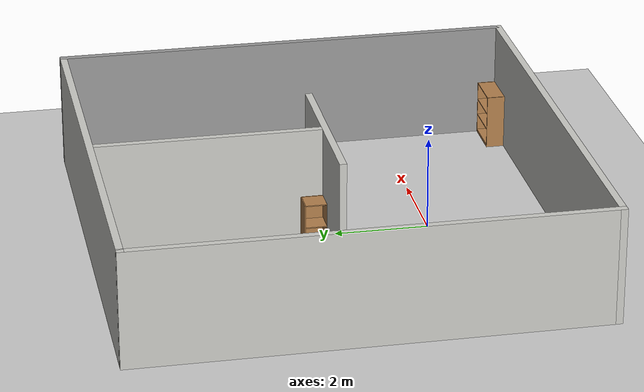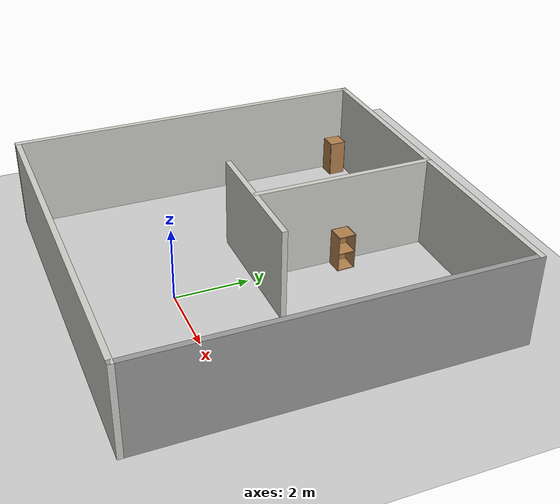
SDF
<sdf version="1.7">
 <world name="default">
  <light name="sun" type="directional">
   <pose>0 0 10 0 -0 0</pose>
   <diffuse>0.8 0.8 0.8 1</diffuse>
   <specular>0.2 0.2 0.2 1</specular>
   <attenuation>
    <range>1000</range>
    <constant>0.9</constant>
    <linear>0.01</linear>
    <quadratic>0.001</quadratic>
   </attenuation>
   <direction>-0.5 0.1 -0.9</direction>
   <spot><inner_angle>0</inner_angle><outer_angle>0</outer_angle><falloff>0</falloff></spot>
  </light>
  <model name="ground_plane">
   <static>1</static>
   <link name="link">
    <collision name="collision">
     <geometry><plane><normal>0 0 1</normal><size>100 100</size></plane></geometry>
     <surface><friction><ode><mu>100</mu><mu2>50</mu2></ode></friction></surface>
    </collision>
    <visual name="visual">
     <cast_shadows>0</cast_shadows>
     <geometry><plane><normal>0 0 1</normal><size>100 100</size></plane></geometry>
     <material>
      <script><uri>file://media/materials/scripts/gazebo.material</uri><name>Gazebo/Grey</name></script>
     </material>
    </visual>
   </link>
  </model>
  <gravity>0 0 -9.8</gravity>
  <magnetic_field>6e-06 2.3e-05 -4.2e-05</magnetic_field>
  <atmosphere type="adiabatic"/>
  <physics type="ode">
   <max_step_size>0.001</max_step_size>
   <real_time_factor>1</real_time_factor>
   <real_time_update_rate>1000</real_time_update_rate>
  </physics>
  <scene><ambient>0.4 0.4 0.4 1</ambient><background>0.7 0.7 0.7 1</background><shadows>1</shadows></scene>
  <audio><device>default</device></audio>
  <spherical_coordinates>
   <surface_model>EARTH_WGS84</surface_model>
   <latitude_deg>0</latitude_deg>
   <longitude_deg>0</longitude_deg>
   <elevation>0</elevation>
   <heading_deg>0</heading_deg>
  </spherical_coordinates>
  <model name="cafteria_walls_4">
   <pose>-0.113552 2.20857 0 0 -0 0</pose>
   <link name="Wall_0">
    <collision name="Wall_0_Collision">
     <geometry><box><size>10 0.15 2.5</size></box></geometry>
     <pose>0 0 1.25 0 -0 0</pose>
    </collision>
    <visual name="Wall_0_Visual">
     <pose>0 0 1.25 0 -0 0</pose>
     <geometry><box><size>10 0.15 2.5</size></box></geometry>
     <material>
      <script><uri>file://media/materials/scripts/gazebo.material</uri><name>Gazebo/CeilingTiled</name></script>
      <ambient>1 1 1 1</ambient>
     </material>
     <meta><layer>0</layer></meta>
    </visual>
    <pose>-0 4.925 0 0 -0 0</pose>
   </link>
   <link name="Wall_3">
    <collision name="Wall_3_Collision">
     <geometry><box><size>10 0.15 2.5</size></box></geometry>
     <pose>0 0 1.25 0 -0 0</pose>
    </collision>
    <visual name="Wall_3_Visual">
     <pose>0 0 1.25 0 -0 0</pose>
     <geometry><box><size>10 0.15 2.5</size></box></geometry>
     <material>
      <script><uri>file://media/materials/scripts/gazebo.material</uri><name>Gazebo/Grey</name></script>
      <ambient>1 1 1 1</ambient>
     </material>
     <meta><layer>0</layer></meta>
    </visual>
    <pose>4.925 0 0 0 -0 -1.5708</pose>
   </link>
   <link name="Wall_4">
    <collision name="Wall_4_Collision">
     <geometry><box><size>10 0.15 2.5</size></box></geometry>
     <pose>0 0 1.25 0 -0 0</pose>
    </collision>
    <visual name="Wall_4_Visual">
     <pose>0 0 1.25 0 -0 0</pose>
     <geometry><box><size>10 0.15 2.5</size></box></geometry>
     <material>
      <script><uri>file://media/materials/scripts/gazebo.material</uri><name>Gazebo/CeilingTiled</name></script>
      <ambient>1 1 1 1</ambient>
     </material>
     <meta><layer>0</layer></meta>
    </visual>
    <pose>-0 -4.925 0 0 -0 3.14159</pose>
   </link>
   <link name="Wall_5">
    <collision name="Wall_5_Collision">
     <geometry><box><size>10 0.15 2.5</size></box></geometry>
     <pose>0 0 1.25 0 -0 0</pose>
    </collision>
    <visual name="Wall_5_Visual">
     <pose>0 0 1.25 0 -0 0</pose>
     <geometry><box><size>10 0.15 2.5</size></box></geometry>
     <material>
      <script><uri>file://media/materials/scripts/gazebo.material</uri><name>Gazebo/CeilingTiled</name></script>
      <ambient>1 1 1 1</ambient>
     </material>
     <meta><layer>0</layer></meta>
    </visual>
    <pose>-4.925 0 0 0 -0 1.5708</pose>
   </link>
   <link name="Wall_7">
    <collision name="Wall_7_Collision">
     <geometry><box><size>5 0.15 2.5</size></box></geometry>
     <pose>0 0 1.25 0 -0 0</pose>
    </collision>
    <visual name="Wall_7_Visual">
     <pose>0 0 1.25 0 -0 0</pose>
     <geometry><box><size>5 0.15 2.5</size></box></geometry>
     <material>
      <script><uri>file://media/materials/scripts/gazebo.material</uri><name>Gazebo/CeilingTiled</name></script>
      <ambient>1 1 1 1</ambient>
     </material>
     <meta><layer>0</layer></meta>
    </visual>
    <pose>0.026394 2.49278 0 0 -0 -1.5708</pose>
   </link>
   <link name="Wall_9">
    <collision name="Wall_9_Collision">
     <geometry><box><size>3.75 0.15 2.5</size></box></geometry>
     <pose>0 0 1.25 0 -0 0</pose>
    </collision>
    <visual name="Wall_9_Visual">
     <pose>0 0 1.25 0 -0 0</pose>
     <geometry><box><size>3.75 0.15 2.5</size></box></geometry>
     <material>
      <script><uri>file://media/materials/scripts/gazebo.material</uri><name>Gazebo/CeilingTiled</name></script>
      <ambient>1 1 1 1</ambient>
     </material>
     <meta><layer>0</layer></meta>
    </visual>
    <pose>0.026643 0.014094 0 0 -0 0</pose>
   </link>
   <static>1</static>
  </model>
  <model name="bookshelf">
   <static>1</static>
   <link name="link">
    <inertial><mass>1</mass></inertial>
    <collision name="back">
     <pose>0 0.005 0.6 0 -0 0</pose>
     <geometry><box><size>0.9 0.01 1.2</size></box></geometry>
    </collision>
    <visual name="visual1">
     <pose>0 0.005 0.6 0 -0 0</pose>
     <geometry><box><size>0.9 0.01 1.2</size></box></geometry>
     <material>
      <script><uri>file://media/materials/scripts/gazebo.material</uri><name>Gazebo/Wood</name></script>
     </material>
    </visual>
    <collision name="left_side">
     <pose>0.45 -0.195 0.6 0 -0 0</pose>
     <geometry><box><size>0.02 0.4 1.2</size></box></geometry>
    </collision>
    <visual name="visual2">
     <pose>0.45 -0.195 0.6 0 -0 0</pose>
     <geometry><box><size>0.02 0.4 1.2</size></box></geometry>
     <material>
      <script><uri>file://media/materials/scripts/gazebo.material</uri><name>Gazebo/Wood</name></script>
     </material>
    </visual>
    <collision name="right_side">
     <pose>-0.45 -0.195 0.6 0 -0 0</pose>
     <geometry><box><size>0.02 0.4 1.2</size></box></geometry>
    </collision>
    <visual name="visual3">
     <pose>-0.45 -0.195 0.6 0 -0 0</pose>
     <geometry><box><size>0.02 0.4 1.2</size></box></geometry>
     <material>
      <script><uri>file://media/materials/scripts/gazebo.material</uri><name>Gazebo/Wood</name></script>
     </material>
    </visual>
    <collision name="bottom">
     <pose>0 -0.195 0.03 0 -0 0</pose>
     <geometry><box><size>0.88 0.4 0.06</size></box></geometry>
    </collision>
    <visual name="visual4">
     <pose>0 -0.195 0.03 0 -0 0</pose>
     <geometry><box><size>0.88 0.4 0.06</size></box></geometry>
     <material>
      <script><uri>file://media/materials/scripts/gazebo.material</uri><name>Gazebo/Wood</name></script>
     </material>
    </visual>
    <collision name="top">
     <pose>0 -0.195 1.19 0 -0 0</pose>
     <geometry><box><size>0.88 0.4 0.02</size></box></geometry>
    </collision>
    <visual name="visual5">
     <pose>0 -0.195 1.19 0 -0 0</pose>
     <geometry><box><size>0.88 0.4 0.02</size></box></geometry>
     <material>
      <script><uri>file://media/materials/scripts/gazebo.material</uri><name>Gazebo/Wood</name></script>
     </material>
    </visual>
    <collision name="low_shelf">
     <pose>0 -0.195 0.43 0 -0 0</pose>
     <geometry><box><size>0.88 0.4 0.02</size></box></geometry>
    </collision>
    <visual name="visual6">
     <pose>0 -0.195 0.43 0 -0 0</pose>
     <geometry><box><size>0.88 0.4 0.02</size></box></geometry>
     <material>
      <script><uri>file://media/materials/scripts/gazebo.material</uri><name>Gazebo/Wood</name></script>
     </material>
    </visual>
    <collision name="high_shelf">
     <pose>0 -0.195 0.8 0 -0 0</pose>
     <geometry><box><size>0.88 0.4 0.02</size></box></geometry>
    </collision>
    <visual name="visual7">
     <pose>0 -0.195 0.8 0 -0 0</pose>
     <geometry><box><size>0.88 0.4 0.02</size></box></geometry>
     <material>
      <script><uri>file://media/materials/scripts/gazebo.material</uri><name>Gazebo/Wood</name></script>
     </material>
    </visual>
   </link>
   <pose>4.26586 -2.64744 0 0 -0 3.13802</pose>
  </model>
  <model name="cabinet">
   <static>1</static>
   <link name="cabinet_bottom_plate">
    <inertial>
     <pose>0 0 -1 0 -0 0</pose>
     <inertia><ixx>2.05</ixx><ixy>0</ixy><ixz>0</ixz><iyy>2.05</iyy><iyz>0</iyz><izz>2.05</izz></inertia>
     <mass>25</mass>
    </inertial>
    <collision name="cabinet_bottom_plate_geom">
     <pose>0 0 0.01 0 -0 0</pose>
     <geometry><box><size>0.45 0.45 0.02</size></box></geometry>
    </collision>
    <visual name="cabinet_bottom_plate_geom_visual">
     <pose>0 0 0.01 0 -0 0</pose>
     <geometry><box><size>0.45 0.45 0.02</size></box></geometry>
     <material>
      <script><uri>file://media/materials/scripts/gazebo.material</uri><name>Gazebo/Wood</name></script>
     </material>
    </visual>
    <collision name="cabinet_bottom_plate_geom_cabinet_back_plate">
     <pose>0.235 0 0.51 0 -0 0</pose>
     <geometry><box><size>0.02 0.45 1.02</size></box></geometry>
    </collision>
    <visual name="cabinet_bottom_plate_geom_cabinet_back_plate_visual">
     <pose>0.235 0 0.51 0 -0 0</pose>
     <geometry><box><size>0.02 0.45 1.02</size></box></geometry>
     <material>
      <script><uri>file://media/materials/scripts/gazebo.material</uri><name>Gazebo/Wood</name></script>
     </material>
    </visual>
    <collision name="cabinet_bottom_plate_geom_cabinet_left_plate">
     <pose>0 0.235 0.51 0 -0 0</pose>
     <geometry><box><size>0.45 0.02 1.02</size></box></geometry>
    </collision>
    <visual name="cabinet_bottom_plate_geom_cabinet_left_plate_visual">
     <pose>0 0.235 0.51 0 -0 0</pose>
     <geometry><box><size>0.45 0.02 1.02</size></box></geometry>
     <material>
      <script><uri>file://media/materials/scripts/gazebo.material</uri><name>Gazebo/Wood</name></script>
     </material>
    </visual>
    <collision name="cabinet_bottom_plate_geom_cabinet_middle_plate">
     <pose>0 0 0.51 0 -0 0</pose>
     <geometry><box><size>0.45 0.45 0.02</size></box></geometry>
    </collision>
    <visual name="cabinet_bottom_plate_geom_cabinet_middle_plate_visual">
     <pose>0 0 0.51 0 -0 0</pose>
     <geometry><box><size>0.45 0.45 0.02</size></box></geometry>
     <material>
      <script><uri>file://media/materials/scripts/gazebo.material</uri><name>Gazebo/Wood</name></script>
     </material>
    </visual>
    <collision name="cabinet_bottom_plate_geom_cabinet_right_plate">
     <pose>0 -0.235 0.51 0 -0 0</pose>
     <geometry><box><size>0.45 0.02 1.02</size></box></geometry>
    </collision>
    <visual name="cabinet_bottom_plate_geom_cabinet_right_plate_visual">
     <pose>0 -0.235 0.51 0 -0 0</pose>
     <geometry><box><size>0.45 0.02 1.02</size></box></geometry>
     <material>
      <script><uri>file://media/materials/scripts/gazebo.material</uri><name>Gazebo/Wood</name></script>
     </material>
    </visual>
    <collision name="cabinet_bottom_plate_geom_cabinet_top_plate">
     <pose>0 0 1.01 0 -0 0</pose>
     <geometry><box><size>0.45 0.45 0.02</size></box></geometry>
    </collision>
    <visual name="cabinet_bottom_plate_geom_cabinet_top_plate_visual">
     <pose>0 0 1.01 0 -0 0</pose>
     <geometry><box><size>0.45 0.45 0.02</size></box></geometry>
     <material>
      <script><uri>file://media/materials/scripts/gazebo.material</uri><name>Gazebo/Wood</name></script>
     </material>
    </visual>
   </link>
   <pose>-4.66908 6.70633 0 0 -0 0</pose>
  </model>
  <model name="cabinet_0">
   <static>1</static>
   <link name="cabinet_bottom_plate">
    <inertial>
     <pose>0 0 -1 0 -0 0</pose>
     <inertia><ixx>2.05</ixx><ixy>0</ixy><ixz>0</ixz><iyy>2.05</iyy><iyz>0</iyz><izz>2.05</izz></inertia>
     <mass>25</mass>
    </inertial>
    <collision name="cabinet_bottom_plate_geom">
     <pose>0 0 0.01 0 -0 0</pose>
     <geometry><box><size>0.45 0.45 0.02</size></box></geometry>
    </collision>
    <visual name="cabinet_bottom_plate_geom_visual">
     <pose>0 0 0.01 0 -0 0</pose>
     <geometry><box><size>0.45 0.45 0.02</size></box></geometry>
     <material>
      <script><uri>file://media/materials/scripts/gazebo.material</uri><name>Gazebo/Wood</name></script>
     </material>
    </visual>
    <collision name="cabinet_bottom_plate_geom_cabinet_back_plate">
     <pose>0.235 0 0.51 0 -0 0</pose>
     <geometry><box><size>0.02 0.45 1.02</size></box></geometry>
    </collision>
    <visual name="cabinet_bottom_plate_geom_cabinet_back_plate_visual">
     <pose>0.235 0 0.51 0 -0 0</pose>
     <geometry><box><size>0.02 0.45 1.02</size></box></geometry>
     <material>
      <script><uri>file://media/materials/scripts/gazebo.material</uri><name>Gazebo/Wood</name></script>
     </material>
    </visual>
    <collision name="cabinet_bottom_plate_geom_cabinet_left_plate">
     <pose>0 0.235 0.51 0 -0 0</pose>
     <geometry><box><size>0.45 0.02 1.02</size></box></geometry>
    </collision>
    <visual name="cabinet_bottom_plate_geom_cabinet_left_plate_visual">
     <pose>0 0.235 0.51 0 -0 0</pose>
     <geometry><box><size>0.45 0.02 1.02</size></box></geometry>
     <material>
      <script><uri>file://media/materials/scripts/gazebo.material</uri><name>Gazebo/Wood</name></script>
     </material>
    </visual>
    <collision name="cabinet_bottom_plate_geom_cabinet_middle_plate">
     <pose>0 0 0.51 0 -0 0</pose>
     <geometry><box><size>0.45 0.45 0.02</size></box></geometry>
    </collision>
    <visual name="cabinet_bottom_plate_geom_cabinet_middle_plate_visual">
     <pose>0 0 0.51 0 -0 0</pose>
     <geometry><box><size>0.45 0.45 0.02</size></box></geometry>
     <material>
      <script><uri>file://media/materials/scripts/gazebo.material</uri><name>Gazebo/Wood</name></script>
     </material>
    </visual>
    <collision name="cabinet_bottom_plate_geom_cabinet_right_plate">
     <pose>0 -0.235 0.51 0 -0 0</pose>
     <geometry><box><size>0.45 0.02 1.02</size></box></geometry>
    </collision>
    <visual name="cabinet_bottom_plate_geom_cabinet_right_plate_visual">
     <pose>0 -0.235 0.51 0 -0 0</pose>
     <geometry><box><size>0.45 0.02 1.02</size></box></geometry>
     <material>
      <script><uri>file://media/materials/scripts/gazebo.material</uri><name>Gazebo/Wood</name></script>
     </material>
    </visual>
    <collision name="cabinet_bottom_plate_geom_cabinet_top_plate">
     <pose>0 0 1.01 0 -0 0</pose>
     <geometry><box><size>0.45 0.45 0.02</size></box></geometry>
    </collision>
    <visual name="cabinet_bottom_plate_geom_cabinet_top_plate_visual">
     <pose>0 0 1.01 0 -0 0</pose>
     <geometry><box><size>0.45 0.45 0.02</size></box></geometry>
     <material>
      <script><uri>file://media/materials/scripts/gazebo.material</uri><name>Gazebo/Wood</name></script>
     </material>
    </visual>
   </link>
   <pose>-0.430886 2.52493 0 0 -0 0</pose>
  </model>
  <model name="cabinet_1">
   <static>1</static>
   <link name="cabinet_bottom_plate">
    <inertial>
     <pose>0 0 -1 0 -0 0</pose>
     <inertia><ixx>2.05</ixx><ixy>0</ixy><ixz>0</ixz><iyy>2.05</iyy><iyz>0</iyz><izz>2.05</izz></inertia>
     <mass>25</mass>
    </inertial>
    <collision name="cabinet_bottom_plate_geom">
     <pose>0 0 0.01 0 -0 0</pose>
     <geometry><box><size>0.45 0.45 0.02</size></box></geometry>
    </collision>
    <visual name="cabinet_bottom_plate_geom_visual">
     <pose>0 0 0.01 0 -0 0</pose>
     <geometry><box><size>0.45 0.45 0.02</size></box></geometry>
     <material>
      <script><uri>file://media/materials/scripts/gazebo.material</uri><name>Gazebo/Wood</name></script>
     </material>
    </visual>
    <collision name="cabinet_bottom_plate_geom_cabinet_back_plate">
     <pose>0.235 0 0.51 0 -0 0</pose>
     <geometry><box><size>0.02 0.45 1.02</size></box></geometry>
    </collision>
    <visual name="cabinet_bottom_plate_geom_cabinet_back_plate_visual">
     <pose>0.235 0 0.51 0 -0 0</pose>
     <geometry><box><size>0.02 0.45 1.02</size></box></geometry>
     <material>
      <script><uri>file://media/materials/scripts/gazebo.material</uri><name>Gazebo/Wood</name></script>
     </material>
    </visual>
    <collision name="cabinet_bottom_plate_geom_cabinet_left_plate">
     <pose>0 0.235 0.51 0 -0 0</pose>
     <geometry><box><size>0.45 0.02 1.02</size></box></geometry>
    </collision>
    <visual name="cabinet_bottom_plate_geom_cabinet_left_plate_visual">
     <pose>0 0.235 0.51 0 -0 0</pose>
     <geometry><box><size>0.45 0.02 1.02</size></box></geometry>
     <material>
      <script><uri>file://media/materials/scripts/gazebo.material</uri><name>Gazebo/Wood</name></script>
     </material>
    </visual>
    <collision name="cabinet_bottom_plate_geom_cabinet_middle_plate">
     <pose>0 0 0.51 0 -0 0</pose>
     <geometry><box><size>0.45 0.45 0.02</size></box></geometry>
    </collision>
    <visual name="cabinet_bottom_plate_geom_cabinet_middle_plate_visual">
     <pose>0 0 0.51 0 -0 0</pose>
     <geometry><box><size>0.45 0.45 0.02</size></box></geometry>
     <material>
      <script><uri>file://media/materials/scripts/gazebo.material</uri><name>Gazebo/Wood</name></script>
     </material>
    </visual>
    <collision name="cabinet_bottom_plate_geom_cabinet_right_plate">
     <pose>0 -0.235 0.51 0 -0 0</pose>
     <geometry><box><size>0.45 0.02 1.02</size></box></geometry>
    </collision>
    <visual name="cabinet_bottom_plate_geom_cabinet_right_plate_visual">
     <pose>0 -0.235 0.51 0 -0 0</pose>
     <geometry><box><size>0.45 0.02 1.02</size></box></geometry>
     <material>
      <script><uri>file://media/materials/scripts/gazebo.material</uri><name>Gazebo/Wood</name></script>
     </material>
    </visual>
    <collision name="cabinet_bottom_plate_geom_cabinet_top_plate">
     <pose>0 0 1.01 0 -0 0</pose>
     <geometry><box><size>0.45 0.45 0.02</size></box></geometry>
    </collision>
    <visual name="cabinet_bottom_plate_geom_cabinet_top_plate_visual">
     <pose>0 0 1.01 0 -0 0</pose>
     <geometry><box><size>0.45 0.45 0.02</size></box></geometry>
     <material>
      <script><uri>file://media/materials/scripts/gazebo.material</uri><name>Gazebo/Wood</name></script>
     </material>
    </visual>
   </link>
   <pose>0.224871 4.58947 0 0 0 -3.10237</pose>
  </model>
 </world>
</sdf>
